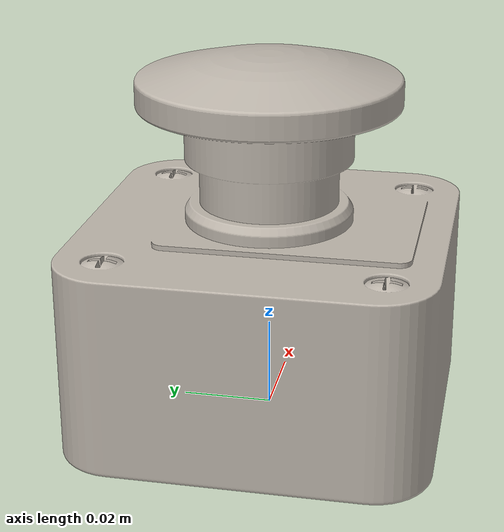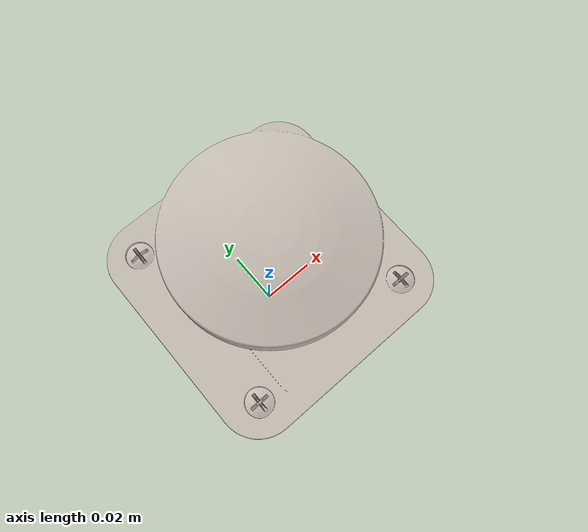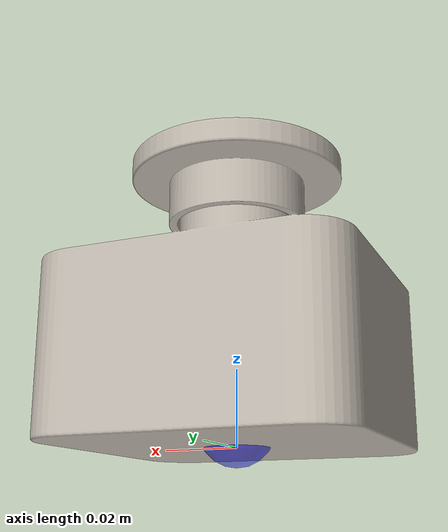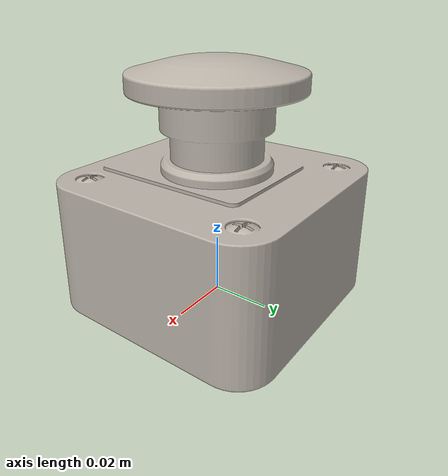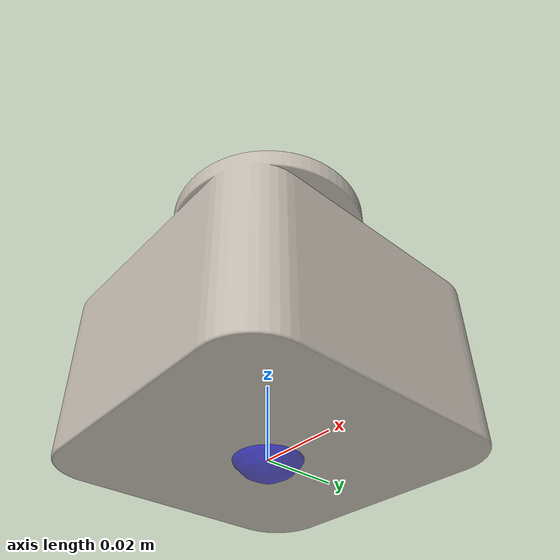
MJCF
<mujoco model="stop_button">
  <asset>
    <mesh name="my_object" file="meshes/stop_button/textured.obj" scale = "1.0 1.0 0.9"/>
    <texture file="meshes/stop_button/texture_map.png" name="tex-can" type="2d"/>
    <material name="coke" reflectance="0.7" texrepeat="5 5" texture="tex-can" texuniform="true"/>
  </asset>
  <worldbody>
    <body>
        <body name="object">
            <site rgba="0 0 0 0" size="0.005" pos="0 0 0" name="center_site"/>
            <site size="0.01 0.01 0.01" pos="0 0 0.005" name="up_site" rgba="0 0 1 0.5" type="sphere" group="1"/>
            <geom pos="0 0 0" mesh="my_object" type="mesh" solimp="0.998 0.998 0.001" solref="0.001 1" density="100" friction="0.95 0.3 0.1" contype="2" conaffinity="2" material="coke" group="1"/>
        </body>
    </body>
  </worldbody>
</mujoco>
